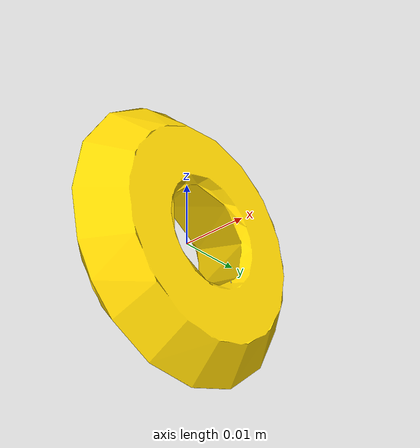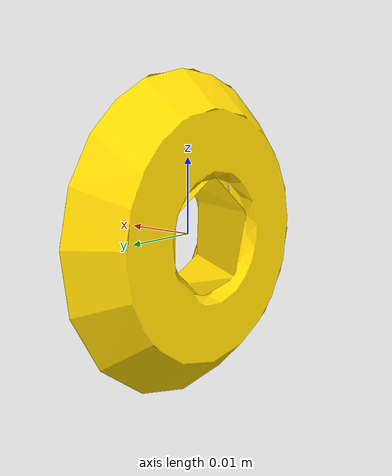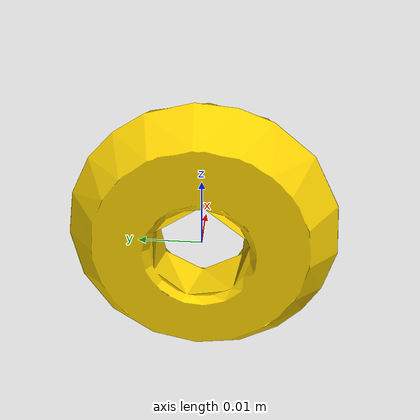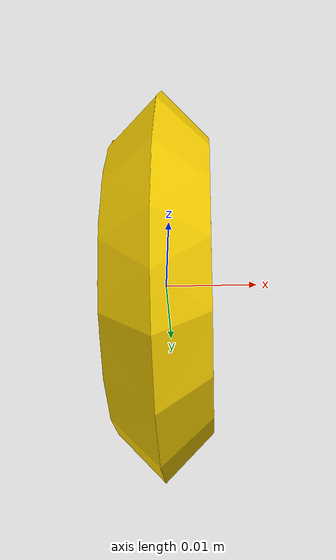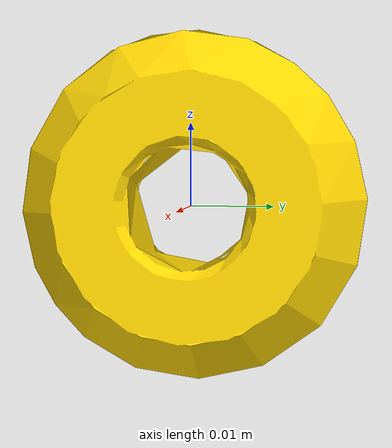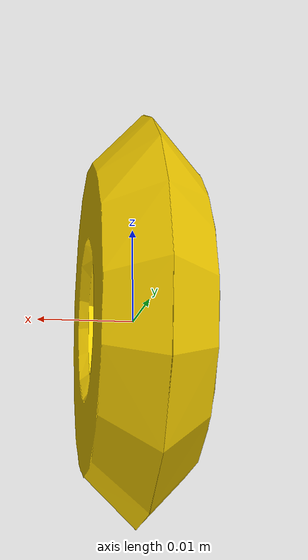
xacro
<?xml version="1.0"?>
<robot xmlns:xacro="http://ros.org/wiki/xacro" name="probe_sim">

  <xacro:macro name="probe">
    <link name="probe_center">
      <inertial>
        <mass value="0.00954"/>
        <origin xyz="0 0 0"/>
        <inertia
          ixx="1.965e-6" ixy="0.0" ixz="0.0"
          iyy="1.048e-6" iyz="0.0"
          izz="1.048e-6"/>
      </inertial>
      <visual>
        <geometry>
          <mesh filename="package://leo_erc_description/models/Probe.dae"/>
        </geometry>
      </visual>
      <collision>
        <geometry>
          <mesh filename="package://leo_erc_description/models/Probe.dae"/>
        </geometry>
      </collision>
    </link>

    <gazebo reference="probe_center">
      <mu1>3.0</mu1>
      <mu2>3.0</mu2>
      <fdir1>0 1 0</fdir1>
      <minDepth>0.002</minDepth>
    </gazebo>

  </xacro:macro>
  <xacro:probe/>

</robot>
